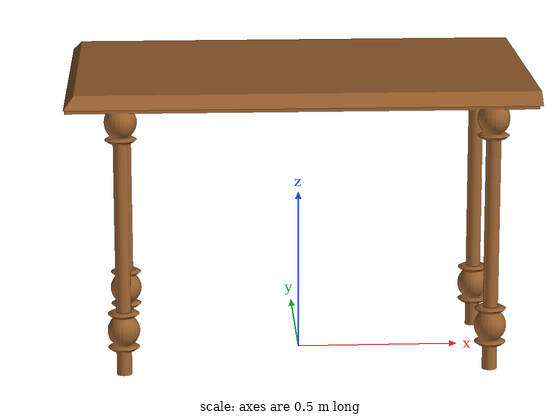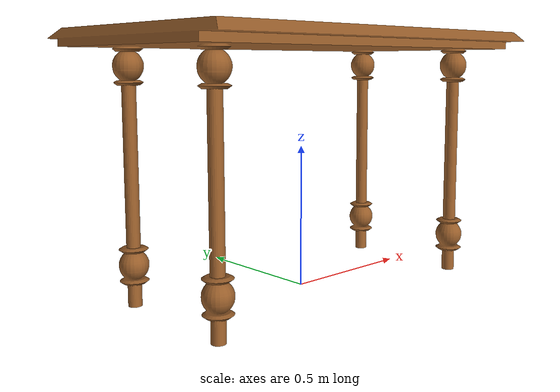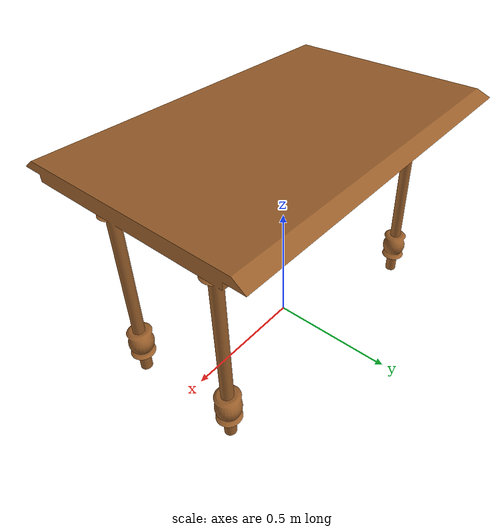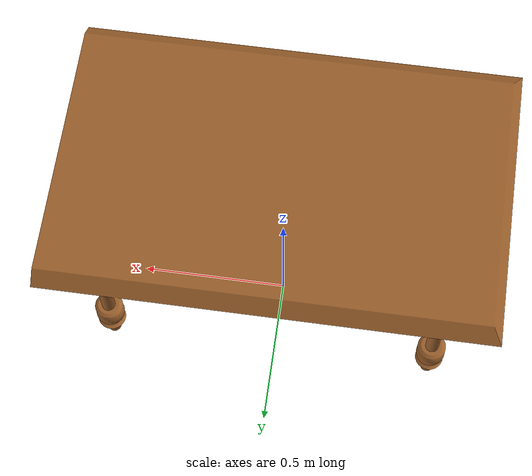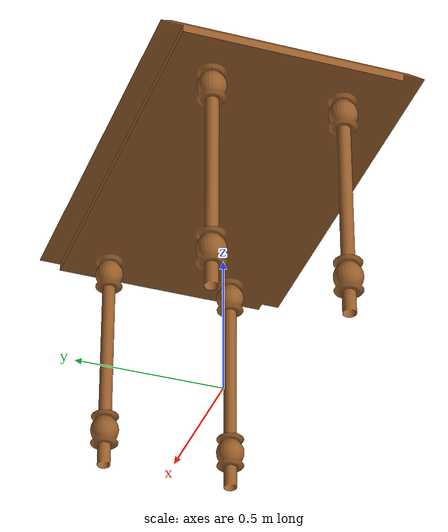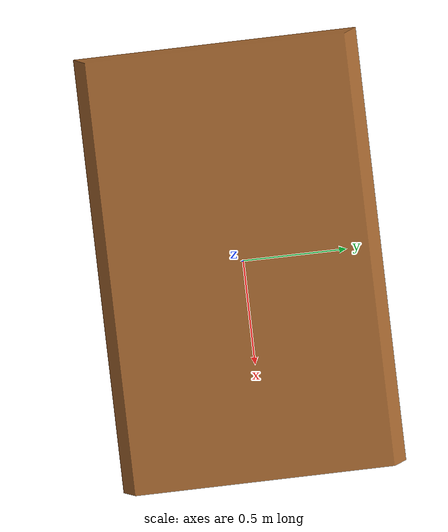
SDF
<?xml version="1.0" ?>
<sdf version="1.5">
  <model name="table_2person_1">
    <link name="link">
      <pose>0 0 0 0 0 0</pose>
      <collision name="collision">
        <geometry>
          <mesh>
            <uri>model://table_2person_1/meshes/model.dae</uri>
          </mesh>
        </geometry>
      </collision>
      <visual name="visual">
        <geometry>
          <mesh>
            <uri>model://table_2person_1/meshes/model.dae</uri>
          </mesh>
        </geometry>
      </visual>
    </link>
    <static>1</static>
  </model>
</sdf>
